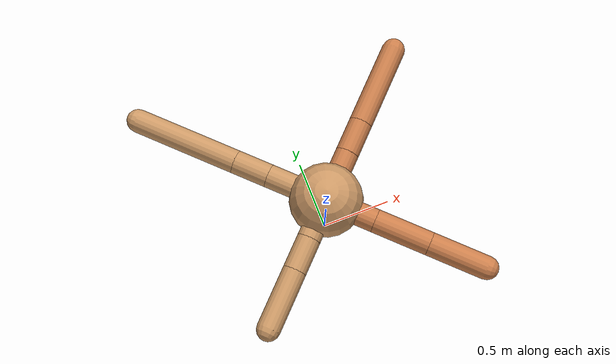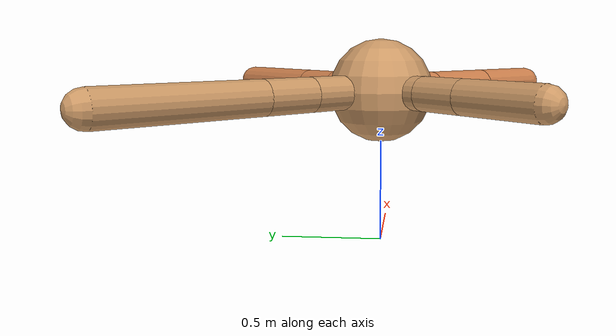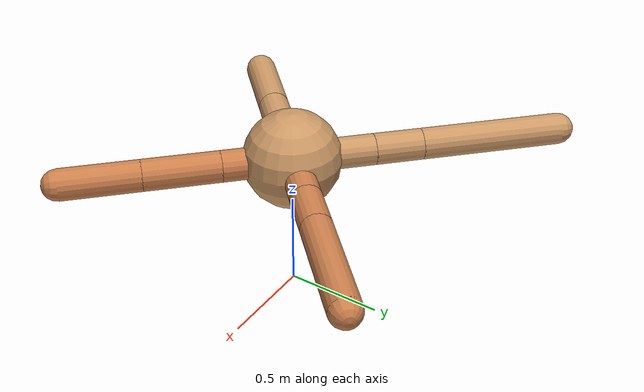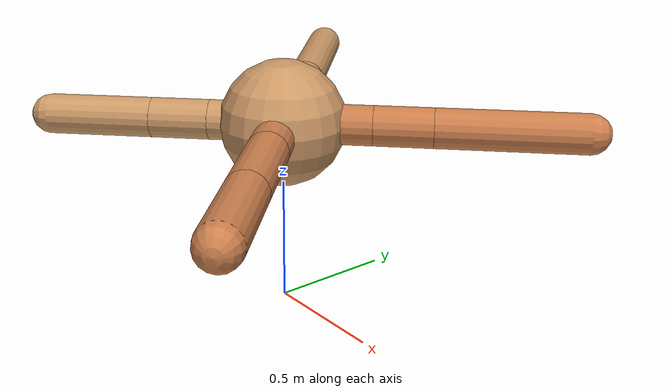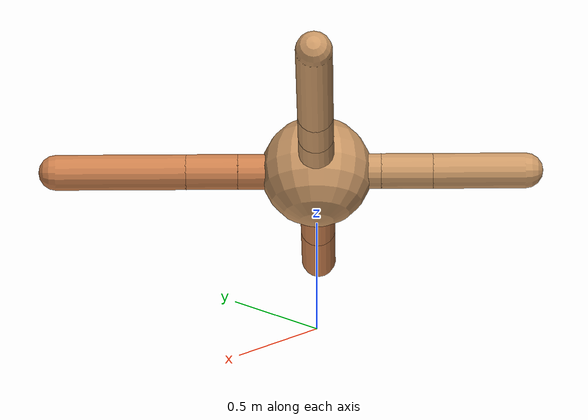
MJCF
<mujoco model="ant">
  <compiler angle="degree" coordinate="local" inertiafromgeom="true" />
  <option integrator="RK4" timestep="0.01" />
  <custom>
    <numeric data="0.0 0.0 0.55 1.0 0.0 0.0 0.0 0.0 1.0 0.0 -1.0 0.0 -1.0 0.0 1.0" name="init_qpos" />
  </custom>
  <default>
    <joint armature="1" damping="1" limited="true" />
    <geom conaffinity="0" condim="3" density="5.0" friction="1.5 0.1 0.1" margin="0.01" rgba="0.8 0.6 0.4 1" />
  </default>
  <worldbody>
    <body name="torso" pos="0 0 0.75">
      <geom name="torso_geom" pos="0 0 0" size="0.25" type="sphere" />

      <body name="front_left_leg" pos="0 0 0">
        <geom fromto="0.0 0.0 0.0 0.25036733470588735 0.25036733470588735 0.0" name="aux_1_geom" size="0.08" type="capsule" rgba=".8 .5 .3 1" />
        <body name="aux_1" pos="0.25036733470588735 0.25036733470588735 0.0">
          <joint axis="0 0 1" name="hip_1" pos="0.0 0.0 0.0" range="-40 40" type="hinge" />
          <geom fromto="0.0 0.0 0.0 0.16475129908370117 0.16475129908370117 0.0" name="left_leg_geom" size="0.08" type="capsule" rgba=".8 .5 .3 1" />
          <body pos="0.16475129908370117 0.16475129908370117 0.0" name="front_left_foot">
            <joint axis="-1 1 0" name="ankle_1" pos="0.0 0.0 0.0" range="30 100" type="hinge" />
            <geom fromto="0.0 0.0 0.0 0.41403956399007646 0.41403956399007646 0.0" name="left_ankle_geom" size="0.08" type="capsule" rgba=".8 .5 .3 1" />
          </body>
        </body>
      </body>
      <body name="front_right_leg" pos="0 0 0">
        <geom fromto="0.0 0.0 0.0 -0.29524637308164464 0.29524637308164464 0.0" name="aux_2_geom" size="0.08" type="capsule" />
        <body name="aux_2" pos="-0.29524637308164464 0.29524637308164464 0.0">
          <joint axis="0 0 1" name="hip_2" pos="0.0 0.0 0.0" range="-40 40" type="hinge" />
          <geom fromto="0.0 0.0 0.0 -0.17318760601306993 0.17318760601306993 0.0" name="right_leg_geom" size="0.08" type="capsule" />
          <body pos="-0.17318760601306993 0.17318760601306993 0.0" name="front_right_foot">
            <joint axis="1 1 0" name="ankle_2" pos="0.0 0.0 0.0" range="-100 -30" type="hinge" />
            <geom fromto="0.0 0.0 0.0 -0.5146060621901112 0.5146060621901112 0.0" name="right_ankle_geom" size="0.08" type="capsule" />
          </body>
        </body>
      </body>
      <body name="left_back_leg" pos="0 0 0">
        <geom fromto="0.0 0.0 0.0 -0.20472698762104902 -0.20472698762104902 0.0" name="aux_3_geom" size="0.08" type="capsule" />
        <body name="aux_3" pos="-0.20472698762104902 -0.20472698762104902 0.0">
          <joint axis="0 0 1" name="hip_3" pos="0.0 0.0 0.0" range="-40 40" type="hinge" />
          <geom fromto="0.0 0.0 0.0 -0.16466611398719244 -0.16466611398719244 0.0" name="back_leg_geom" size="0.08" type="capsule" />
          <body pos="-0.16466611398719244 -0.16466611398719244 0.0" name="left_back_foot">
            <joint axis="-1 1 0" name="ankle_3" pos="0.0 0.0 0.0" range="-100 -30" type="hinge" />
            <geom fromto="0.0 0.0 0.0 -0.2941573935615779 -0.2941573935615779 0.0" name="third_ankle_geom" size="0.08" type="capsule" />
          </body>
        </body>
      </body>
      <body name="right_back_leg" pos="0 0 0">
        <geom fromto="0.0 0.0 0.0 0.2500330668138257 -0.2500330668138257 0.0" name="aux_4_geom" size="0.08" type="capsule" rgba=".8 .5 .3 1" />
        <body name="aux_4" pos="0.2500330668138257 -0.2500330668138257 0.0">
          <joint axis="0 0 1" name="hip_4" pos="0.0 0.0 0.0" range="-40 40" type="hinge" />
          <geom fromto="0.0 0.0 0.0 0.27437192898877394 -0.27437192898877394 0.0" name="rightback_leg_geom" size="0.08" type="capsule" rgba=".8 .5 .3 1" />
          <body pos="0.27437192898877394 -0.27437192898877394 0.0" name="right_back_foot">
            <joint axis="1 1 0" name="ankle_4" pos="0.0 0.0 0.0" range="30 100" type="hinge" />
            <geom fromto="0.0 0.0 0.0 0.2841500380459811 -0.2841500380459811 0.0" name="fourth_ankle_geom" size="0.08" type="capsule" rgba=".8 .5 .3 1" />
          </body>
        </body>
      </body>
    </body>
  </worldbody>
  <actuator>
    <motor ctrllimited="true" ctrlrange="-1.0 1.0" joint="hip_4" gear="150" />
    <motor ctrllimited="true" ctrlrange="-1.0 1.0" joint="ankle_4" gear="150" />
    <motor ctrllimited="true" ctrlrange="-1.0 1.0" joint="hip_1" gear="150" />
    <motor ctrllimited="true" ctrlrange="-1.0 1.0" joint="ankle_1" gear="150" />
    <motor ctrllimited="true" ctrlrange="-1.0 1.0" joint="hip_2" gear="150" />
    <motor ctrllimited="true" ctrlrange="-1.0 1.0" joint="ankle_2" gear="150" />
    <motor ctrllimited="true" ctrlrange="-1.0 1.0" joint="hip_3" gear="150" />
    <motor ctrllimited="true" ctrlrange="-1.0 1.0" joint="ankle_3" gear="150" />
  </actuator>
</mujoco>
